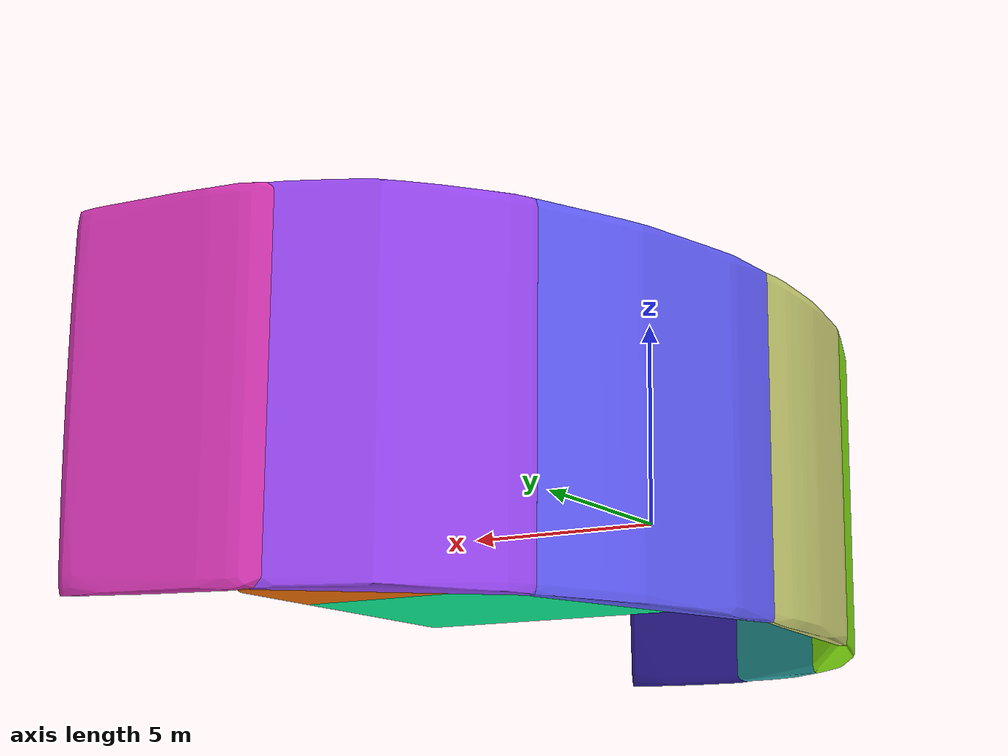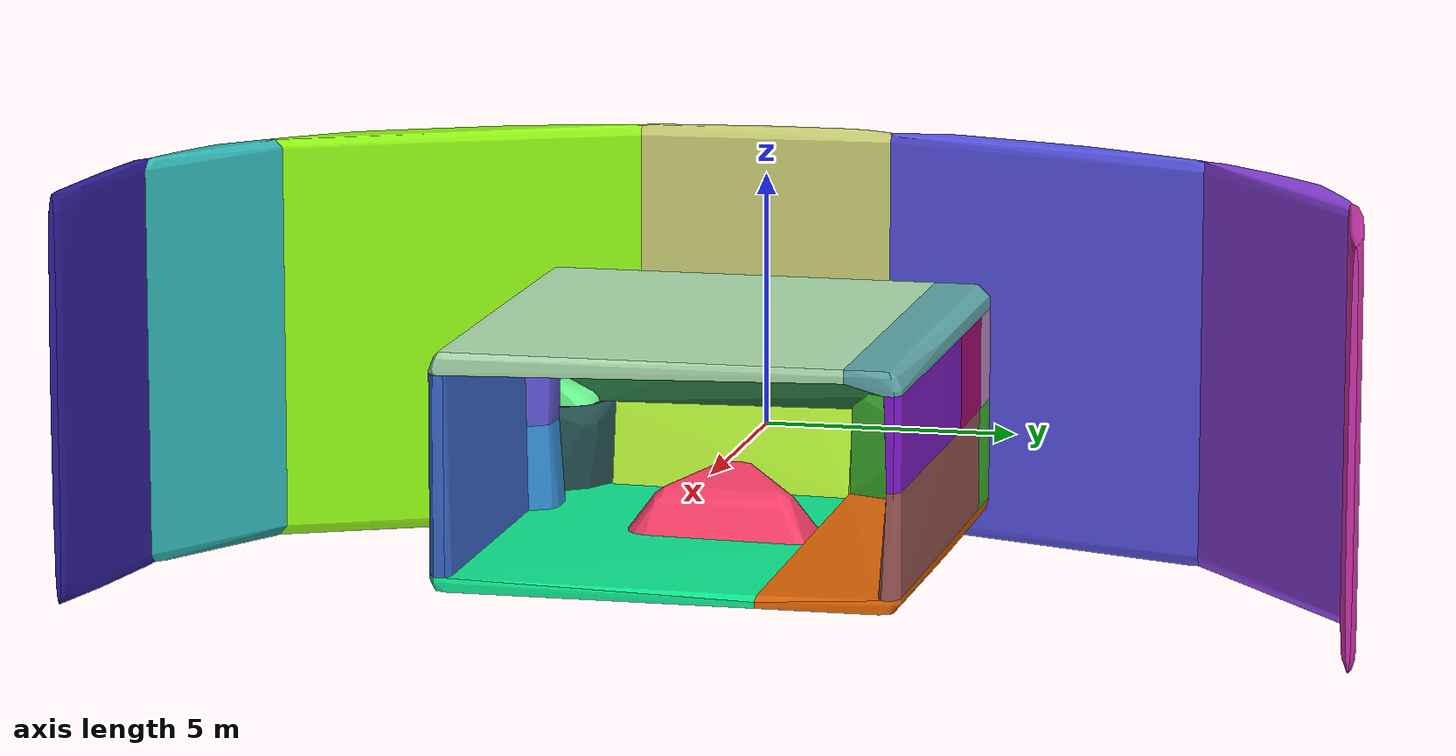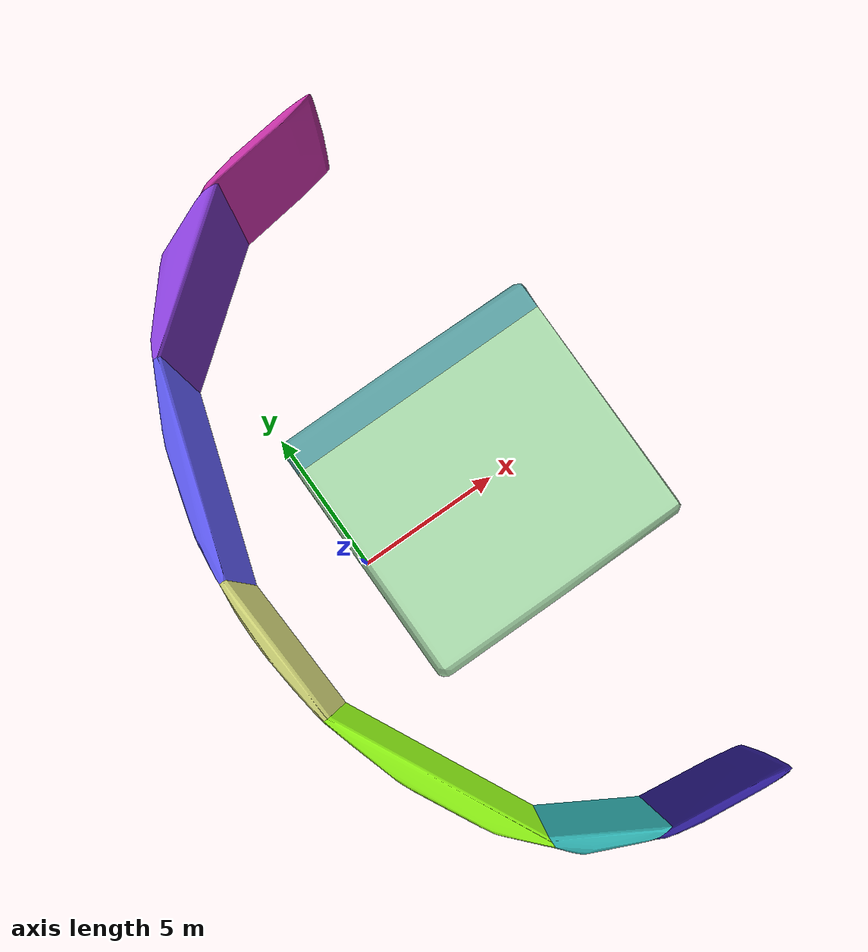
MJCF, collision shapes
<mujoco model="minimalistic_modern_office">
  <compiler angle="radian" eulerseq="xyz"/>
  <default>
    <default class="visual">
      <geom group="2" type="mesh" contype="0" conaffinity="0"/>
    </default>
    <default class="collision">
      <geom group="3" type="mesh"/>
    </default>
  </default>
  <asset>
    <texture type="2d" name="material_0" file="material_0.png"/>
    <material name="material_0" texture="material_0" specular="0.4000000000000001" shininess="0.001"/>
    <material name="material_1" specular="0.4000000000000001" shininess="0.001" rgba="0.80000000 0.80000000 0.80000000 1.0"/>
    <texture type="2d" name="material_2" file="material_2.png"/>
    <material name="material_2" texture="material_2" specular="0.4000000000000001" shininess="0.001"/>
    <texture type="2d" name="material_3" file="material_3.png"/>
    <material name="material_3" texture="material_3" specular="0.4000000000000001" shininess="0.001"/>
    <texture type="2d" name="material_4" file="material_4.png"/>
    <material name="material_4" texture="material_4" specular="0.4000000000000001" shininess="0.001"/>
    <texture type="2d" name="material_5" file="material_5.png"/>
    <material name="material_5" texture="material_5" specular="0.4000000000000001" shininess="0.001"/>
    <texture type="2d" name="material_6" file="material_6.png"/>
    <material name="material_6" texture="material_6" specular="0.4000000000000001" shininess="0.001"/>
    <texture type="2d" name="material_7" file="material_7.png"/>
    <material name="material_7" texture="material_7" specular="0.4000000000000001" shininess="0.001"/>
    <material name="material_8" specular="0.4000000000000001" shininess="0.001" rgba="0.80000000 0.80000000 0.80000000 1.0"/>
    <mesh file="minimalistic_modern_office_0.obj"/>
    <mesh file="minimalistic_modern_office_1.obj"/>
    <mesh file="minimalistic_modern_office_2.obj"/>
    <mesh file="minimalistic_modern_office_3.obj"/>
    <mesh file="minimalistic_modern_office_4.obj"/>
    <mesh file="minimalistic_modern_office_5.obj"/>
    <mesh file="minimalistic_modern_office_6.obj"/>
    <mesh file="minimalistic_modern_office_7.obj"/>
    <mesh file="minimalistic_modern_office_8.obj"/>
    <mesh file="minimalistic_modern_office_collision_0.obj"/>
    <mesh file="minimalistic_modern_office_collision_1.obj"/>
    <mesh file="minimalistic_modern_office_collision_2.obj"/>
    <mesh file="minimalistic_modern_office_collision_3.obj"/>
    <mesh file="minimalistic_modern_office_collision_4.obj"/>
    <mesh file="minimalistic_modern_office_collision_5.obj"/>
    <mesh file="minimalistic_modern_office_collision_6.obj"/>
    <mesh file="minimalistic_modern_office_collision_7.obj"/>
    <mesh file="minimalistic_modern_office_collision_8.obj"/>
    <mesh file="minimalistic_modern_office_collision_9.obj"/>
    <mesh file="minimalistic_modern_office_collision_10.obj"/>
    <mesh file="minimalistic_modern_office_collision_11.obj"/>
    <mesh file="minimalistic_modern_office_collision_12.obj"/>
    <mesh file="minimalistic_modern_office_collision_13.obj"/>
    <mesh file="minimalistic_modern_office_collision_14.obj"/>
    <mesh file="minimalistic_modern_office_collision_15.obj"/>
    <mesh file="minimalistic_modern_office_collision_16.obj"/>
    <mesh file="minimalistic_modern_office_collision_17.obj"/>
    <mesh file="minimalistic_modern_office_collision_18.obj"/>
    <mesh file="minimalistic_modern_office_collision_19.obj"/>
    <mesh file="minimalistic_modern_office_collision_20.obj"/>
    <mesh file="minimalistic_modern_office_collision_21.obj"/>
    <mesh file="minimalistic_modern_office_collision_22.obj"/>
    <mesh file="minimalistic_modern_office_collision_23.obj"/>
    <mesh file="minimalistic_modern_office_collision_24.obj"/>
  </asset>
  <worldbody>
    <body name="minimalistic_modern_office" euler="1.57 0 0">
      <geom mesh="minimalistic_modern_office_0" material="material_8" class="visual"/>
      <geom mesh="minimalistic_modern_office_1" material="material_7" class="visual"/>
      <geom mesh="minimalistic_modern_office_2" material="material_6" class="visual"/>
      <geom mesh="minimalistic_modern_office_3" material="material_5" class="visual"/>
      <geom mesh="minimalistic_modern_office_4" material="material_4" class="visual"/>
      <geom mesh="minimalistic_modern_office_5" material="material_3" class="visual"/>
      <geom mesh="minimalistic_modern_office_6" material="material_2" class="visual"/>
      <geom mesh="minimalistic_modern_office_7" material="material_1" class="visual"/>
      <geom mesh="minimalistic_modern_office_8" material="material_0" class="visual"/>
      <geom mesh="minimalistic_modern_office_collision_0" rgba="0.8275357835889013 0.20294004920301256 0.692959279637698 1" class="collision"/>
      <geom mesh="minimalistic_modern_office_collision_1" rgba="0.7998401455984216 0.8180859659149233 0.45512778395582076 1" class="collision"/>
      <geom mesh="minimalistic_modern_office_collision_2" rgba="0.5829284831793196 0.2711302330485962 0.9322198399983849 1" class="collision"/>
      <geom mesh="minimalistic_modern_office_collision_3" rgba="0.5669722276981861 0.9686705913355991 0.07995896589561846 1" class="collision"/>
      <geom mesh="minimalistic_modern_office_collision_4" rgba="0.37597718847249195 0.3600247042205079 0.966773747288005 1" class="collision"/>
      <geom mesh="minimalistic_modern_office_collision_5" rgba="0.1869953515604421 0.7057957238830913 0.7042123777900939 1" class="collision"/>
      <geom mesh="minimalistic_modern_office_collision_6" rgba="0.190764038755032 0.1201327865432863 0.6121553046507677 1" class="collision"/>
      <geom mesh="minimalistic_modern_office_collision_7" rgba="0.9188293643001973 0.4200814185614625 0.022205390239506517 1" class="collision"/>
      <geom mesh="minimalistic_modern_office_collision_8" rgba="0.6999384707937172 0.9019767424854618 0.7072382786500667 1" class="collision"/>
      <geom mesh="minimalistic_modern_office_collision_9" rgba="0.14055430721188567 0.43625907128037067 0.23515167387767633 1" class="collision"/>
      <geom mesh="minimalistic_modern_office_collision_10" rgba="0.3770527406842422 0.33735383215582215 0.8396918514403295 1" class="collision"/>
      <geom mesh="minimalistic_modern_office_collision_11" rgba="0.04560365013054912 0.9458913788422266 0.5843321755333402 1" class="collision"/>
      <geom mesh="minimalistic_modern_office_collision_12" rgba="0.2621271974536856 0.7391131990684031 0.19463433122208562 1" class="collision"/>
      <geom mesh="minimalistic_modern_office_collision_13" rgba="0.4058834880562475 0.9595548395249386 0.5518359546159765 1" class="collision"/>
      <geom mesh="minimalistic_modern_office_collision_14" rgba="0.6176004846638391 0.3486572844494378 0.3372002083603427 1" class="collision"/>
      <geom mesh="minimalistic_modern_office_collision_15" rgba="0.38077146553871644 0.6724376262250565 0.6812035203196178 1" class="collision"/>
      <geom mesh="minimalistic_modern_office_collision_16" rgba="0.13642322191882417 0.30611058887738896 0.3031762202526619 1" class="collision"/>
      <geom mesh="minimalistic_modern_office_collision_17" rgba="0.5109848524301737 0.10417968140365186 0.8079770897871896 1" class="collision"/>
      <geom mesh="minimalistic_modern_office_collision_18" rgba="0.715143122895009 0.9527508815999056 0.21661924297240542 1" class="collision"/>
      <geom mesh="minimalistic_modern_office_collision_19" rgba="0.9720989085024383 0.2413908699066778 0.4063965515214387 1" class="collision"/>
      <geom mesh="minimalistic_modern_office_collision_20" rgba="0.22835503965834147 0.4151097785694373 0.8075772453740807 1" class="collision"/>
      <geom mesh="minimalistic_modern_office_collision_21" rgba="0.3843112575768678 0.8784048567196837 0.668425987574271 1" class="collision"/>
      <geom mesh="minimalistic_modern_office_collision_22" rgba="0.6791174501161747 0.02976916631621329 0.466136722609654 1" class="collision"/>
      <geom mesh="minimalistic_modern_office_collision_23" rgba="0.7959178680071353 0.5728351889625001 0.8236755260041876 1" class="collision"/>
      <geom mesh="minimalistic_modern_office_collision_24" rgba="0.18961773025641415 0.5449711919612333 0.820999155597745 1" class="collision"/>
    </body>
  </worldbody>
</mujoco>
